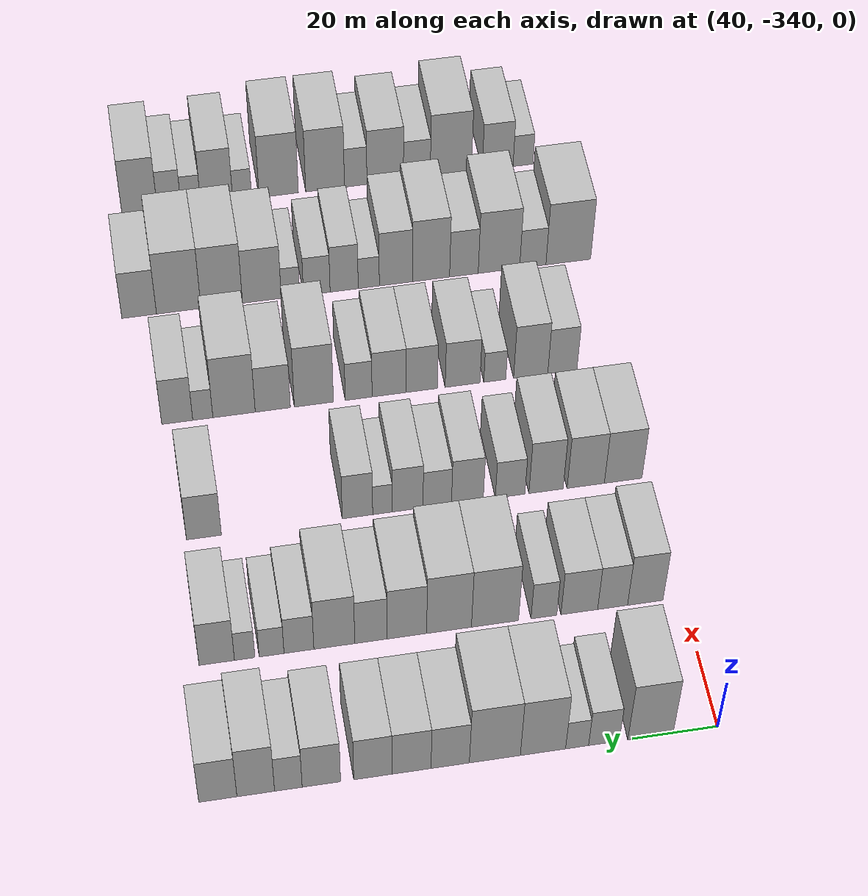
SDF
<sdf version="1.6">
 <world name="default">
  <model name="building_27">
   <static>1</static>
   <pose>50.0000 -324.1556 0 0.000000 0.000000 0.000000</pose>
   <link name="link">
    <pose>0 0 12.00 0 0 0</pose>
    <collision name="collision"><geometry><box><size>20.0000 10.5934 24.0000</size></box></geometry></collision>
    <visual name="visual">
     <cast_shadows>0</cast_shadows>
     <geometry><box><size>20.0000 10.5934 24.0000</size></box></geometry>
     <material>
      <script>
       <uri>model://HANNAS_wall/materials/scripts</uri>
       <uri>model://HANNAS_wall/materials/textures</uri>
       <name>vrc/HANNAS_wall</name>
      </script>
     </material>
    </visual>
   </link>
  </model>
  <model name="building_28">
   <static>1</static>
   <pose>50.0000 -313.2942 0 0.000000 0.000000 0.000000</pose>
   <link name="link">
    <pose>0 0 7.50 0 0 0</pose>
    <collision name="collision"><geometry><box><size>20.0000 7.1293 15.0000</size></box></geometry></collision>
    <visual name="visual">
     <cast_shadows>0</cast_shadows>
     <geometry><box><size>20.0000 7.1293 15.0000</size></box></geometry>
     <material>
      <script>
       <uri>model://HANNAS_wall/materials/scripts</uri>
       <uri>model://HANNAS_wall/materials/textures</uri>
       <name>vrc/HANNAS_wall</name>
      </script>
     </material>
    </visual>
   </link>
  </model>
  <model name="building_29">
   <static>1</static>
   <pose>50.0000 -307.0606 0 0.000000 0.000000 0.000000</pose>
   <link name="link">
    <pose>0 0 6.00 0 0 0</pose>
    <collision name="collision"><geometry><box><size>20.0000 5.3380 12.0000</size></box></geometry></collision>
    <visual name="visual">
     <cast_shadows>0</cast_shadows>
     <geometry><box><size>20.0000 5.3380 12.0000</size></box></geometry>
     <material>
      <script>
       <uri>model://HANNAS_wall/materials/scripts</uri>
       <uri>model://HANNAS_wall/materials/textures</uri>
       <name>vrc/HANNAS_wall</name>
      </script>
     </material>
    </visual>
   </link>
  </model>
  <model name="building_30">
   <static>1</static>
   <pose>50.0000 -299.1573 0 0.000000 0.000000 0.000000</pose>
   <link name="link">
    <pose>0 0 12.00 0 0 0</pose>
    <collision name="collision"><geometry><box><size>20.0000 10.4685 24.0000</size></box></geometry></collision>
    <visual name="visual">
     <cast_shadows>0</cast_shadows>
     <geometry><box><size>20.0000 10.4685 24.0000</size></box></geometry>
     <material>
      <script>
       <uri>model://HANNAS_wall/materials/scripts</uri>
       <uri>model://HANNAS_wall/materials/textures</uri>
       <name>vrc/HANNAS_wall</name>
      </script>
     </material>
    </visual>
   </link>
  </model>
  <model name="building_31">
   <static>1</static>
   <pose>50.0000 -288.0382 0 0.000000 0.000000 0.000000</pose>
   <link name="link">
    <pose>0 0 12.00 0 0 0</pose>
    <collision name="collision"><geometry><box><size>20.0000 11.7698 24.0000</size></box></geometry></collision>
    <visual name="visual">
     <cast_shadows>0</cast_shadows>
     <geometry><box><size>20.0000 11.7698 24.0000</size></box></geometry>
     <material>
      <script>
       <uri>model://HANNAS_wall/materials/scripts</uri>
       <uri>model://HANNAS_wall/materials/textures</uri>
       <name>vrc/HANNAS_wall</name>
      </script>
     </material>
    </visual>
   </link>
  </model>
  <model name="building_32">
   <static>1</static>
   <pose>50.0000 -277.7396 0 0.000000 0.000000 0.000000</pose>
   <link name="link">
    <pose>0 0 9.00 0 0 0</pose>
    <collision name="collision"><geometry><box><size>20.0000 8.8274 18.0000</size></box></geometry></collision>
    <visual name="visual">
     <cast_shadows>0</cast_shadows>
     <geometry><box><size>20.0000 8.8274 18.0000</size></box></geometry>
     <material>
      <script>
       <uri>model://HANNAS_wall/materials/scripts</uri>
       <uri>model://HANNAS_wall/materials/textures</uri>
       <name>vrc/HANNAS_wall</name>
      </script>
     </material>
    </visual>
   </link>
  </model>
  <model name="building_33">
   <static>1</static>
   <pose>50.0000 -268.8376 0 0.000000 0.000000 0.000000</pose>
   <link name="link">
    <pose>0 0 9.00 0 0 0</pose>
    <collision name="collision"><geometry><box><size>20.0000 8.9766 18.0000</size></box></geometry></collision>
    <visual name="visual">
     <cast_shadows>0</cast_shadows>
     <geometry><box><size>20.0000 8.9766 18.0000</size></box></geometry>
     <material>
      <script>
       <uri>model://HANNAS_wall/materials/scripts</uri>
       <uri>model://HANNAS_wall/materials/textures</uri>
       <name>vrc/HANNAS_wall</name>
      </script>
     </material>
    </visual>
   </link>
  </model>
  <model name="building_34">
   <static>1</static>
   <pose>50.0000 -260.0014 0 0.000000 0.000000 0.000000</pose>
   <link name="link">
    <pose>0 0 9.00 0 0 0</pose>
    <collision name="collision"><geometry><box><size>20.0000 8.6957 18.0000</size></box></geometry></collision>
    <visual name="visual">
     <cast_shadows>0</cast_shadows>
     <geometry><box><size>20.0000 8.6957 18.0000</size></box></geometry>
     <material>
      <script>
       <uri>model://HANNAS_wall/materials/scripts</uri>
       <uri>model://HANNAS_wall/materials/textures</uri>
       <name>vrc/HANNAS_wall</name>
      </script>
     </material>
    </visual>
   </link>
  </model>
  <model name="building_35">
   <static>1</static>
   <pose>50.0000 -248.2878 0 0.000000 0.000000 0.000000</pose>
   <link name="link">
    <pose>0 0 9.00 0 0 0</pose>
    <collision name="collision"><geometry><box><size>20.0000 8.7316 18.0000</size></box></geometry></collision>
    <visual name="visual">
     <cast_shadows>0</cast_shadows>
     <geometry><box><size>20.0000 8.7316 18.0000</size></box></geometry>
     <material>
      <script>
       <uri>model://HANNAS_wall/materials/scripts</uri>
       <uri>model://HANNAS_wall/materials/textures</uri>
       <name>vrc/HANNAS_wall</name>
      </script>
     </material>
    </visual>
   </link>
  </model>
  <model name="building_36">
   <static>1</static>
   <pose>50.0000 -240.7855 0 0.000000 0.000000 0.000000</pose>
   <link name="link">
    <pose>0 0 7.50 0 0 0</pose>
    <collision name="collision"><geometry><box><size>20.0000 6.2729 15.0000</size></box></geometry></collision>
    <visual name="visual">
     <cast_shadows>0</cast_shadows>
     <geometry><box><size>20.0000 6.2729 15.0000</size></box></geometry>
     <material>
      <script>
       <uri>model://HANNAS_wall/materials/scripts</uri>
       <uri>model://HANNAS_wall/materials/textures</uri>
       <name>vrc/HANNAS_wall</name>
      </script>
     </material>
    </visual>
   </link>
  </model>
  <model name="building_37">
   <static>1</static>
   <pose>50.0000 -233.3864 0 0.000000 0.000000 0.000000</pose>
   <link name="link">
    <pose>0 0 10.50 0 0 0</pose>
    <collision name="collision"><geometry><box><size>20.0000 8.5254 21.0000</size></box></geometry></collision>
    <visual name="visual">
     <cast_shadows>0</cast_shadows>
     <geometry><box><size>20.0000 8.5254 21.0000</size></box></geometry>
     <material>
      <script>
       <uri>model://HANNAS_wall/materials/scripts</uri>
       <uri>model://HANNAS_wall/materials/textures</uri>
       <name>vrc/HANNAS_wall</name>
      </script>
     </material>
    </visual>
   </link>
  </model>
  <model name="building_38">
   <static>1</static>
   <pose>50.0000 -224.8166 0 0.000000 0.000000 0.000000</pose>
   <link name="link">
    <pose>0 0 9.00 0 0 0</pose>
    <collision name="collision"><geometry><box><size>20.0000 8.6141 18.0000</size></box></geometry></collision>
    <visual name="visual">
     <cast_shadows>0</cast_shadows>
     <geometry><box><size>20.0000 8.6141 18.0000</size></box></geometry>
     <material>
      <script>
       <uri>model://HANNAS_wall/materials/scripts</uri>
       <uri>model://HANNAS_wall/materials/textures</uri>
       <name>vrc/HANNAS_wall</name>
      </script>
     </material>
    </visual>
   </link>
  </model>
  <model name="building_152">
   <static>1</static>
   <pose>85.0000 -330.8182 0 0.000000 0.000000 0.000000</pose>
   <link name="link">
    <pose>0 0 10.50 0 0 0</pose>
    <collision name="collision"><geometry><box><size>20.0000 8.5727 21.0000</size></box></geometry></collision>
    <visual name="visual">
     <cast_shadows>0</cast_shadows>
     <geometry><box><size>20.0000 8.5727 21.0000</size></box></geometry>
     <material>
      <script>
       <uri>model://HANNAS_wall/materials/scripts</uri>
       <uri>model://HANNAS_wall/materials/textures</uri>
       <name>vrc/HANNAS_wall</name>
      </script>
     </material>
    </visual>
   </link>
  </model>
  <model name="building_153">
   <static>1</static>
   <pose>85.0000 -322.9172 0 0.000000 0.000000 0.000000</pose>
   <link name="link">
    <pose>0 0 9.00 0 0 0</pose>
    <collision name="collision"><geometry><box><size>20.0000 7.2294 18.0000</size></box></geometry></collision>
    <visual name="visual">
     <cast_shadows>0</cast_shadows>
     <geometry><box><size>20.0000 7.2294 18.0000</size></box></geometry>
     <material>
      <script>
       <uri>model://HANNAS_wall/materials/scripts</uri>
       <uri>model://HANNAS_wall/materials/textures</uri>
       <name>vrc/HANNAS_wall</name>
      </script>
     </material>
    </visual>
   </link>
  </model>
  <model name="building_154">
   <static>1</static>
   <pose>85.0000 -314.8812 0 0.000000 0.000000 0.000000</pose>
   <link name="link">
    <pose>0 0 9.00 0 0 0</pose>
    <collision name="collision"><geometry><box><size>20.0000 8.8428 18.0000</size></box></geometry></collision>
    <visual name="visual">
     <cast_shadows>0</cast_shadows>
     <geometry><box><size>20.0000 8.8428 18.0000</size></box></geometry>
     <material>
      <script>
       <uri>model://HANNAS_wall/materials/scripts</uri>
       <uri>model://HANNAS_wall/materials/textures</uri>
       <name>vrc/HANNAS_wall</name>
      </script>
     </material>
    </visual>
   </link>
  </model>
  <model name="building_155">
   <static>1</static>
   <pose>85.0000 -306.3638 0 0.000000 0.000000 0.000000</pose>
   <link name="link">
    <pose>0 0 7.50 0 0 0</pose>
    <collision name="collision"><geometry><box><size>20.0000 6.1920 15.0000</size></box></geometry></collision>
    <visual name="visual">
     <cast_shadows>0</cast_shadows>
     <geometry><box><size>20.0000 6.1920 15.0000</size></box></geometry>
     <material>
      <script>
       <uri>model://HANNAS_wall/materials/scripts</uri>
       <uri>model://HANNAS_wall/materials/textures</uri>
       <name>vrc/HANNAS_wall</name>
      </script>
     </material>
    </visual>
   </link>
  </model>
  <model name="building_156">
   <static>1</static>
   <pose>85.0000 -294.6342 0 0.000000 0.000000 0.000000</pose>
   <link name="link">
    <pose>0 0 12.00 0 0 0</pose>
    <collision name="collision"><geometry><box><size>20.0000 11.2672 24.0000</size></box></geometry></collision>
    <visual name="visual">
     <cast_shadows>0</cast_shadows>
     <geometry><box><size>20.0000 11.2672 24.0000</size></box></geometry>
     <material>
      <script>
       <uri>model://HANNAS_wall/materials/scripts</uri>
       <uri>model://HANNAS_wall/materials/textures</uri>
       <name>vrc/HANNAS_wall</name>
      </script>
     </material>
    </visual>
   </link>
  </model>
  <model name="building_157">
   <static>1</static>
   <pose>85.0000 -283.6379 0 0.000000 0.000000 0.000000</pose>
   <link name="link">
    <pose>0 0 12.00 0 0 0</pose>
    <collision name="collision"><geometry><box><size>20.0000 10.7253 24.0000</size></box></geometry></collision>
    <visual name="visual">
     <cast_shadows>0</cast_shadows>
     <geometry><box><size>20.0000 10.7253 24.0000</size></box></geometry>
     <material>
      <script>
       <uri>model://HANNAS_wall/materials/scripts</uri>
       <uri>model://HANNAS_wall/materials/textures</uri>
       <name>vrc/HANNAS_wall</name>
      </script>
     </material>
    </visual>
   </link>
  </model>
  <model name="building_158">
   <static>1</static>
   <pose>85.0000 -273.5858 0 0.000000 0.000000 0.000000</pose>
   <link name="link">
    <pose>0 0 10.50 0 0 0</pose>
    <collision name="collision"><geometry><box><size>20.0000 9.3789 21.0000</size></box></geometry></collision>
    <visual name="visual">
     <cast_shadows>0</cast_shadows>
     <geometry><box><size>20.0000 9.3789 21.0000</size></box></geometry>
     <material>
      <script>
       <uri>model://HANNAS_wall/materials/scripts</uri>
       <uri>model://HANNAS_wall/materials/textures</uri>
       <name>vrc/HANNAS_wall</name>
      </script>
     </material>
    </visual>
   </link>
  </model>
  <model name="building_159">
   <static>1</static>
   <pose>85.0000 -265.0694 0 0.000000 0.000000 0.000000</pose>
   <link name="link">
    <pose>0 0 9.00 0 0 0</pose>
    <collision name="collision"><geometry><box><size>20.0000 7.6539 18.0000</size></box></geometry></collision>
    <visual name="visual">
     <cast_shadows>0</cast_shadows>
     <geometry><box><size>20.0000 7.6539 18.0000</size></box></geometry>
     <material>
      <script>
       <uri>model://HANNAS_wall/materials/scripts</uri>
       <uri>model://HANNAS_wall/materials/textures</uri>
       <name>vrc/HANNAS_wall</name>
      </script>
     </material>
    </visual>
   </link>
  </model>
  <model name="building_160">
   <static>1</static>
   <pose>85.0000 -256.4128 0 0.000000 0.000000 0.000000</pose>
   <link name="link">
    <pose>0 0 10.50 0 0 0</pose>
    <collision name="collision"><geometry><box><size>20.0000 9.6593 21.0000</size></box></geometry></collision>
    <visual name="visual">
     <cast_shadows>0</cast_shadows>
     <geometry><box><size>20.0000 9.6593 21.0000</size></box></geometry>
     <material>
      <script>
       <uri>model://HANNAS_wall/materials/scripts</uri>
       <uri>model://HANNAS_wall/materials/textures</uri>
       <name>vrc/HANNAS_wall</name>
      </script>
     </material>
    </visual>
   </link>
  </model>
  <model name="building_161">
   <static>1</static>
   <pose>85.0000 -248.0635 0 0.000000 0.000000 0.000000</pose>
   <link name="link">
    <pose>0 0 7.50 0 0 0</pose>
    <collision name="collision"><geometry><box><size>20.0000 7.0393 15.0000</size></box></geometry></collision>
    <visual name="visual">
     <cast_shadows>0</cast_shadows>
     <geometry><box><size>20.0000 7.0393 15.0000</size></box></geometry>
     <material>
      <script>
       <uri>model://HANNAS_wall/materials/scripts</uri>
       <uri>model://HANNAS_wall/materials/textures</uri>
       <name>vrc/HANNAS_wall</name>
      </script>
     </material>
    </visual>
   </link>
  </model>
  <model name="building_162">
   <static>1</static>
   <pose>85.0000 -241.6218 0 0.000000 0.000000 0.000000</pose>
   <link name="link">
    <pose>0 0 6.00 0 0 0</pose>
    <collision name="collision"><geometry><box><size>20.0000 5.8442 12.0000</size></box></geometry></collision>
    <visual name="visual">
     <cast_shadows>0</cast_shadows>
     <geometry><box><size>20.0000 5.8442 12.0000</size></box></geometry>
     <material>
      <script>
       <uri>model://HANNAS_wall/materials/scripts</uri>
       <uri>model://HANNAS_wall/materials/textures</uri>
       <name>vrc/HANNAS_wall</name>
      </script>
     </material>
    </visual>
   </link>
  </model>
  <model name="building_163">
   <static>1</static>
   <pose>85.0000 -235.2996 0 0.000000 0.000000 0.000000</pose>
   <link name="link">
    <pose>0 0 6.00 0 0 0</pose>
    <collision name="collision"><geometry><box><size>20.0000 4.8002 12.0000</size></box></geometry></collision>
    <visual name="visual">
     <cast_shadows>0</cast_shadows>
     <geometry><box><size>20.0000 4.8002 12.0000</size></box></geometry>
     <material>
      <script>
       <uri>model://HANNAS_wall/materials/scripts</uri>
       <uri>model://HANNAS_wall/materials/textures</uri>
       <name>vrc/HANNAS_wall</name>
      </script>
     </material>
    </visual>
   </link>
  </model>
  <model name="building_164">
   <static>1</static>
   <pose>85.0000 -228.7469 0 0.000000 0.000000 0.000000</pose>
   <link name="link">
    <pose>0 0 9.00 0 0 0</pose>
    <collision name="collision"><geometry><box><size>20.0000 8.3051 18.0000</size></box></geometry></collision>
    <visual name="visual">
     <cast_shadows>0</cast_shadows>
     <geometry><box><size>20.0000 8.3051 18.0000</size></box></geometry>
     <material>
      <script>
       <uri>model://HANNAS_wall/materials/scripts</uri>
       <uri>model://HANNAS_wall/materials/textures</uri>
       <name>vrc/HANNAS_wall</name>
      </script>
     </material>
    </visual>
   </link>
  </model>
  <model name="building_277">
   <static>1</static>
   <pose>120.0000 -333.1719 0 0.000000 0.000000 0.000000</pose>
   <link name="link">
    <pose>0 0 10.50 0 0 0</pose>
    <collision name="collision"><geometry><box><size>20.0000 9.4096 21.0000</size></box></geometry></collision>
    <visual name="visual">
     <cast_shadows>0</cast_shadows>
     <geometry><box><size>20.0000 9.4096 21.0000</size></box></geometry>
     <material>
      <script>
       <uri>model://HANNAS_wall/materials/scripts</uri>
       <uri>model://HANNAS_wall/materials/textures</uri>
       <name>vrc/HANNAS_wall</name>
      </script>
     </material>
    </visual>
   </link>
  </model>
  <model name="building_278">
   <static>1</static>
   <pose>120.0000 -323.8063 0 0.000000 0.000000 0.000000</pose>
   <link name="link">
    <pose>0 0 10.50 0 0 0</pose>
    <collision name="collision"><geometry><box><size>20.0000 9.3215 21.0000</size></box></geometry></collision>
    <visual name="visual">
     <cast_shadows>0</cast_shadows>
     <geometry><box><size>20.0000 9.3215 21.0000</size></box></geometry>
     <material>
      <script>
       <uri>model://HANNAS_wall/materials/scripts</uri>
       <uri>model://HANNAS_wall/materials/textures</uri>
       <name>vrc/HANNAS_wall</name>
      </script>
     </material>
    </visual>
   </link>
  </model>
  <model name="building_279">
   <static>1</static>
   <pose>120.0000 -313.8893 0 0.000000 0.000000 0.000000</pose>
   <link name="link">
    <pose>0 0 10.50 0 0 0</pose>
    <collision name="collision"><geometry><box><size>20.0000 8.5126 21.0000</size></box></geometry></collision>
    <visual name="visual">
     <cast_shadows>0</cast_shadows>
     <geometry><box><size>20.0000 8.5126 21.0000</size></box></geometry>
     <material>
      <script>
       <uri>model://HANNAS_wall/materials/scripts</uri>
       <uri>model://HANNAS_wall/materials/textures</uri>
       <name>vrc/HANNAS_wall</name>
      </script>
     </material>
    </visual>
   </link>
  </model>
  <model name="building_280">
   <static>1</static>
   <pose>120.0000 -304.9599 0 0.000000 0.000000 0.000000</pose>
   <link name="link">
    <pose>0 0 7.50 0 0 0</pose>
    <collision name="collision"><geometry><box><size>20.0000 7.3462 15.0000</size></box></geometry></collision>
    <visual name="visual">
     <cast_shadows>0</cast_shadows>
     <geometry><box><size>20.0000 7.3462 15.0000</size></box></geometry>
     <material>
      <script>
       <uri>model://HANNAS_wall/materials/scripts</uri>
       <uri>model://HANNAS_wall/materials/textures</uri>
       <name>vrc/HANNAS_wall</name>
      </script>
     </material>
    </visual>
   </link>
  </model>
  <model name="building_281">
   <static>1</static>
   <pose>120.0000 -294.3494 0 0.000000 0.000000 0.000000</pose>
   <link name="link">
    <pose>0 0 9.00 0 0 0</pose>
    <collision name="collision"><geometry><box><size>20.0000 7.8747 18.0000</size></box></geometry></collision>
    <visual name="visual">
     <cast_shadows>0</cast_shadows>
     <geometry><box><size>20.0000 7.8747 18.0000</size></box></geometry>
     <material>
      <script>
       <uri>model://HANNAS_wall/materials/scripts</uri>
       <uri>model://HANNAS_wall/materials/textures</uri>
       <name>vrc/HANNAS_wall</name>
      </script>
     </material>
    </visual>
   </link>
  </model>
  <model name="building_282">
   <static>1</static>
   <pose>120.0000 -286.8837 0 0.000000 0.000000 0.000000</pose>
   <link name="link">
    <pose>0 0 7.50 0 0 0</pose>
    <collision name="collision"><geometry><box><size>20.0000 7.0568 15.0000</size></box></geometry></collision>
    <visual name="visual">
     <cast_shadows>0</cast_shadows>
     <geometry><box><size>20.0000 7.0568 15.0000</size></box></geometry>
     <material>
      <script>
       <uri>model://HANNAS_wall/materials/scripts</uri>
       <uri>model://HANNAS_wall/materials/textures</uri>
       <name>vrc/HANNAS_wall</name>
      </script>
     </material>
    </visual>
   </link>
  </model>
  <model name="building_283">
   <static>1</static>
   <pose>120.0000 -279.5842 0 0.000000 0.000000 0.000000</pose>
   <link name="link">
    <pose>0 0 9.00 0 0 0</pose>
    <collision name="collision"><geometry><box><size>20.0000 7.5422 18.0000</size></box></geometry></collision>
    <visual name="visual">
     <cast_shadows>0</cast_shadows>
     <geometry><box><size>20.0000 7.5422 18.0000</size></box></geometry>
     <material>
      <script>
       <uri>model://HANNAS_wall/materials/scripts</uri>
       <uri>model://HANNAS_wall/materials/textures</uri>
       <name>vrc/HANNAS_wall</name>
      </script>
     </material>
    </visual>
   </link>
  </model>
  <model name="building_284">
   <static>1</static>
   <pose>120.0000 -273.4069 0 0.000000 0.000000 0.000000</pose>
   <link name="link">
    <pose>0 0 6.00 0 0 0</pose>
    <collision name="collision"><geometry><box><size>20.0000 4.8124 12.0000</size></box></geometry></collision>
    <visual name="visual">
     <cast_shadows>0</cast_shadows>
     <geometry><box><size>20.0000 4.8124 12.0000</size></box></geometry>
     <material>
      <script>
       <uri>model://HANNAS_wall/materials/scripts</uri>
       <uri>model://HANNAS_wall/materials/textures</uri>
       <name>vrc/HANNAS_wall</name>
      </script>
     </material>
    </visual>
   </link>
  </model>
  <model name="building_285">
   <static>1</static>
   <pose>120.0000 -267.2630 0 0.000000 0.000000 0.000000</pose>
   <link name="link">
    <pose>0 0 9.00 0 0 0</pose>
    <collision name="collision"><geometry><box><size>20.0000 7.4753 18.0000</size></box></geometry></collision>
    <visual name="visual">
     <cast_shadows>0</cast_shadows>
     <geometry><box><size>20.0000 7.4753 18.0000</size></box></geometry>
     <material>
      <script>
       <uri>model://HANNAS_wall/materials/scripts</uri>
       <uri>model://HANNAS_wall/materials/textures</uri>
       <name>vrc/HANNAS_wall</name>
      </script>
     </material>
    </visual>
   </link>
  </model>
  <model name="building_286">
   <static>1</static>
   <pose>120.0000 -229.8068 0 0.000000 0.000000 0.000000</pose>
   <link name="link">
    <pose>0 0 9.00 0 0 0</pose>
    <collision name="collision"><geometry><box><size>20.0000 8.4791 18.0000</size></box></geometry></collision>
    <visual name="visual">
     <cast_shadows>0</cast_shadows>
     <geometry><box><size>20.0000 8.4791 18.0000</size></box></geometry>
     <material>
      <script>
       <uri>model://HANNAS_wall/materials/scripts</uri>
       <uri>model://HANNAS_wall/materials/textures</uri>
       <name>vrc/HANNAS_wall</name>
      </script>
     </material>
    </visual>
   </link>
  </model>
  <model name="building_408">
   <static>1</static>
   <pose>155.0000 -325.1106 0 0.000000 0.000000 0.000000</pose>
   <link name="link">
    <pose>0 0 9.00 0 0 0</pose>
    <collision name="collision"><geometry><box><size>20.0000 7.5282 18.0000</size></box></geometry></collision>
    <visual name="visual">
     <cast_shadows>0</cast_shadows>
     <geometry><box><size>20.0000 7.5282 18.0000</size></box></geometry>
     <material>
      <script>
       <uri>model://HANNAS_wall/materials/scripts</uri>
       <uri>model://HANNAS_wall/materials/textures</uri>
       <name>vrc/HANNAS_wall</name>
      </script>
     </material>
    </visual>
   </link>
  </model>
  <model name="building_409">
   <static>1</static>
   <pose>155.0000 -316.9504 0 0.000000 0.000000 0.000000</pose>
   <link name="link">
    <pose>0 0 10.50 0 0 0</pose>
    <collision name="collision"><geometry><box><size>20.0000 8.7922 21.0000</size></box></geometry></collision>
    <visual name="visual">
     <cast_shadows>0</cast_shadows>
     <geometry><box><size>20.0000 8.7922 21.0000</size></box></geometry>
     <material>
      <script>
       <uri>model://HANNAS_wall/materials/scripts</uri>
       <uri>model://HANNAS_wall/materials/textures</uri>
       <name>vrc/HANNAS_wall</name>
      </script>
     </material>
    </visual>
   </link>
  </model>
  <model name="building_410">
   <static>1</static>
   <pose>155.0000 -307.7290 0 0.000000 0.000000 0.000000</pose>
   <link name="link">
    <pose>0 0 6.00 0 0 0</pose>
    <collision name="collision"><geometry><box><size>20.0000 5.6506 12.0000</size></box></geometry></collision>
    <visual name="visual">
     <cast_shadows>0</cast_shadows>
     <geometry><box><size>20.0000 5.6506 12.0000</size></box></geometry>
     <material>
      <script>
       <uri>model://HANNAS_wall/materials/scripts</uri>
       <uri>model://HANNAS_wall/materials/textures</uri>
       <name>vrc/HANNAS_wall</name>
      </script>
     </material>
    </visual>
   </link>
  </model>
  <model name="building_411">
   <static>1</static>
   <pose>155.0000 -299.4483 0 0.000000 0.000000 0.000000</pose>
   <link name="link">
    <pose>0 0 9.00 0 0 0</pose>
    <collision name="collision"><geometry><box><size>20.0000 8.9108 18.0000</size></box></geometry></collision>
    <visual name="visual">
     <cast_shadows>0</cast_shadows>
     <geometry><box><size>20.0000 8.9108 18.0000</size></box></geometry>
     <material>
      <script>
       <uri>model://HANNAS_wall/materials/scripts</uri>
       <uri>model://HANNAS_wall/materials/textures</uri>
       <name>vrc/HANNAS_wall</name>
      </script>
     </material>
    </visual>
   </link>
  </model>
  <model name="building_412">
   <static>1</static>
   <pose>155.0000 -289.0039 0 0.000000 0.000000 0.000000</pose>
   <link name="link">
    <pose>0 0 9.00 0 0 0</pose>
    <collision name="collision"><geometry><box><size>20.0000 7.9780 18.0000</size></box></geometry></collision>
    <visual name="visual">
     <cast_shadows>0</cast_shadows>
     <geometry><box><size>20.0000 7.9780 18.0000</size></box></geometry>
     <material>
      <script>
       <uri>model://HANNAS_wall/materials/scripts</uri>
       <uri>model://HANNAS_wall/materials/textures</uri>
       <name>vrc/HANNAS_wall</name>
      </script>
     </material>
    </visual>
   </link>
  </model>
  <model name="building_413">
   <static>1</static>
   <pose>155.0000 -280.6800 0 0.000000 0.000000 0.000000</pose>
   <link name="link">
    <pose>0 0 9.00 0 0 0</pose>
    <collision name="collision"><geometry><box><size>20.0000 8.6700 18.0000</size></box></geometry></collision>
    <visual name="visual">
     <cast_shadows>0</cast_shadows>
     <geometry><box><size>20.0000 8.6700 18.0000</size></box></geometry>
     <material>
      <script>
       <uri>model://HANNAS_wall/materials/scripts</uri>
       <uri>model://HANNAS_wall/materials/textures</uri>
       <name>vrc/HANNAS_wall</name>
      </script>
     </material>
    </visual>
   </link>
  </model>
  <model name="building_414">
   <static>1</static>
   <pose>155.0000 -272.9404 0 0.000000 0.000000 0.000000</pose>
   <link name="link">
    <pose>0 0 7.50 0 0 0</pose>
    <collision name="collision"><geometry><box><size>20.0000 6.8093 15.0000</size></box></geometry></collision>
    <visual name="visual">
     <cast_shadows>0</cast_shadows>
     <geometry><box><size>20.0000 6.8093 15.0000</size></box></geometry>
     <material>
      <script>
       <uri>model://HANNAS_wall/materials/scripts</uri>
       <uri>model://HANNAS_wall/materials/textures</uri>
       <name>vrc/HANNAS_wall</name>
      </script>
     </material>
    </visual>
   </link>
  </model>
  <model name="building_415">
   <static>1</static>
   <pose>155.0000 -261.5916 0 0.000000 0.000000 0.000000</pose>
   <link name="link">
    <pose>0 0 12.00 0 0 0</pose>
    <collision name="collision"><geometry><box><size>20.0000 9.8883 24.0000</size></box></geometry></collision>
    <visual name="visual">
     <cast_shadows>0</cast_shadows>
     <geometry><box><size>20.0000 9.8883 24.0000</size></box></geometry>
     <material>
      <script>
       <uri>model://HANNAS_wall/materials/scripts</uri>
       <uri>model://HANNAS_wall/materials/textures</uri>
       <name>vrc/HANNAS_wall</name>
      </script>
     </material>
    </visual>
   </link>
  </model>
  <model name="building_416">
   <static>1</static>
   <pose>155.0000 -251.2145 0 0.000000 0.000000 0.000000</pose>
   <link name="link">
    <pose>0 0 9.00 0 0 0</pose>
    <collision name="collision"><geometry><box><size>20.0000 8.8659 18.0000</size></box></geometry></collision>
    <visual name="visual">
     <cast_shadows>0</cast_shadows>
     <geometry><box><size>20.0000 8.8659 18.0000</size></box></geometry>
     <material>
      <script>
       <uri>model://HANNAS_wall/materials/scripts</uri>
       <uri>model://HANNAS_wall/materials/textures</uri>
       <name>vrc/HANNAS_wall</name>
      </script>
     </material>
    </visual>
   </link>
  </model>
  <model name="building_417">
   <static>1</static>
   <pose>155.0000 -241.4467 0 0.000000 0.000000 0.000000</pose>
   <link name="link">
    <pose>0 0 12.00 0 0 0</pose>
    <collision name="collision"><geometry><box><size>20.0000 10.6696 24.0000</size></box></geometry></collision>
    <visual name="visual">
     <cast_shadows>0</cast_shadows>
     <geometry><box><size>20.0000 10.6696 24.0000</size></box></geometry>
     <material>
      <script>
       <uri>model://HANNAS_wall/materials/scripts</uri>
       <uri>model://HANNAS_wall/materials/textures</uri>
       <name>vrc/HANNAS_wall</name>
      </script>
     </material>
    </visual>
   </link>
  </model>
  <model name="building_418">
   <static>1</static>
   <pose>155.0000 -233.5893 0 0.000000 0.000000 0.000000</pose>
   <link name="link">
    <pose>0 0 6.00 0 0 0</pose>
    <collision name="collision"><geometry><box><size>20.0000 5.0452 12.0000</size></box></geometry></collision>
    <visual name="visual">
     <cast_shadows>0</cast_shadows>
     <geometry><box><size>20.0000 5.0452 12.0000</size></box></geometry>
     <material>
      <script>
       <uri>model://HANNAS_wall/materials/scripts</uri>
       <uri>model://HANNAS_wall/materials/textures</uri>
       <name>vrc/HANNAS_wall</name>
      </script>
     </material>
    </visual>
   </link>
  </model>
  <model name="building_419">
   <static>1</static>
   <pose>155.0000 -227.1802 0 0.000000 0.000000 0.000000</pose>
   <link name="link">
    <pose>0 0 9.00 0 0 0</pose>
    <collision name="collision"><geometry><box><size>20.0000 7.7730 18.0000</size></box></geometry></collision>
    <visual name="visual">
     <cast_shadows>0</cast_shadows>
     <geometry><box><size>20.0000 7.7730 18.0000</size></box></geometry>
     <material>
      <script>
       <uri>model://HANNAS_wall/materials/scripts</uri>
       <uri>model://HANNAS_wall/materials/textures</uri>
       <name>vrc/HANNAS_wall</name>
      </script>
     </material>
    </visual>
   </link>
  </model>
  <model name="building_525">
   <static>1</static>
   <pose>190.0000 -333.8595 0 0.000000 0.000000 0.000000</pose>
   <link name="link">
    <pose>0 0 12.00 0 0 0</pose>
    <collision name="collision"><geometry><box><size>20.0000 11.9282 24.0000</size></box></geometry></collision>
    <visual name="visual">
     <cast_shadows>0</cast_shadows>
     <geometry><box><size>20.0000 11.9282 24.0000</size></box></geometry>
     <material>
      <script>
       <uri>model://HANNAS_wall/materials/scripts</uri>
       <uri>model://HANNAS_wall/materials/textures</uri>
       <name>vrc/HANNAS_wall</name>
      </script>
     </material>
    </visual>
   </link>
  </model>
  <model name="building_526">
   <static>1</static>
   <pose>190.0000 -324.3900 0 0.000000 0.000000 0.000000</pose>
   <link name="link">
    <pose>0 0 7.50 0 0 0</pose>
    <collision name="collision"><geometry><box><size>20.0000 7.0108 15.0000</size></box></geometry></collision>
    <visual name="visual">
     <cast_shadows>0</cast_shadows>
     <geometry><box><size>20.0000 7.0108 15.0000</size></box></geometry>
     <material>
      <script>
       <uri>model://HANNAS_wall/materials/scripts</uri>
       <uri>model://HANNAS_wall/materials/textures</uri>
       <name>vrc/HANNAS_wall</name>
      </script>
     </material>
    </visual>
   </link>
  </model>
  <model name="building_527">
   <static>1</static>
   <pose>190.0000 -315.3858 0 0.000000 0.000000 0.000000</pose>
   <link name="link">
    <pose>0 0 12.00 0 0 0</pose>
    <collision name="collision"><geometry><box><size>20.0000 10.9977 24.0000</size></box></geometry></collision>
    <visual name="visual">
     <cast_shadows>0</cast_shadows>
     <geometry><box><size>20.0000 10.9977 24.0000</size></box></geometry>
     <material>
      <script>
       <uri>model://HANNAS_wall/materials/scripts</uri>
       <uri>model://HANNAS_wall/materials/textures</uri>
       <name>vrc/HANNAS_wall</name>
      </script>
     </material>
    </visual>
   </link>
  </model>
  <model name="building_528">
   <static>1</static>
   <pose>190.0000 -306.0948 0 0.000000 0.000000 0.000000</pose>
   <link name="link">
    <pose>0 0 9.00 0 0 0</pose>
    <collision name="collision"><geometry><box><size>20.0000 7.5841 18.0000</size></box></geometry></collision>
    <visual name="visual">
     <cast_shadows>0</cast_shadows>
     <geometry><box><size>20.0000 7.5841 18.0000</size></box></geometry>
     <material>
      <script>
       <uri>model://HANNAS_wall/materials/scripts</uri>
       <uri>model://HANNAS_wall/materials/textures</uri>
       <name>vrc/HANNAS_wall</name>
      </script>
     </material>
    </visual>
   </link>
  </model>
  <model name="building_529">
   <static>1</static>
   <pose>190.0000 -297.3910 0 0.000000 0.000000 0.000000</pose>
   <link name="link">
    <pose>0 0 12.00 0 0 0</pose>
    <collision name="collision"><geometry><box><size>20.0000 9.8235 24.0000</size></box></geometry></collision>
    <visual name="visual">
     <cast_shadows>0</cast_shadows>
     <geometry><box><size>20.0000 9.8235 24.0000</size></box></geometry>
     <material>
      <script>
       <uri>model://HANNAS_wall/materials/scripts</uri>
       <uri>model://HANNAS_wall/materials/textures</uri>
       <name>vrc/HANNAS_wall</name>
      </script>
     </material>
    </visual>
   </link>
  </model>
  <model name="building_530">
   <static>1</static>
   <pose>190.0000 -288.1200 0 0.000000 0.000000 0.000000</pose>
   <link name="link">
    <pose>0 0 10.50 0 0 0</pose>
    <collision name="collision"><geometry><box><size>20.0000 8.7186 21.0000</size></box></geometry></collision>
    <visual name="visual">
     <cast_shadows>0</cast_shadows>
     <geometry><box><size>20.0000 8.7186 21.0000</size></box></geometry>
     <material>
      <script>
       <uri>model://HANNAS_wall/materials/scripts</uri>
       <uri>model://HANNAS_wall/materials/textures</uri>
       <name>vrc/HANNAS_wall</name>
      </script>
     </material>
    </visual>
   </link>
  </model>
  <model name="building_531">
   <static>1</static>
   <pose>190.0000 -280.9846 0 0.000000 0.000000 0.000000</pose>
   <link name="link">
    <pose>0 0 6.00 0 0 0</pose>
    <collision name="collision"><geometry><box><size>20.0000 5.5521 12.0000</size></box></geometry></collision>
    <visual name="visual">
     <cast_shadows>0</cast_shadows>
     <geometry><box><size>20.0000 5.5521 12.0000</size></box></geometry>
     <material>
      <script>
       <uri>model://HANNAS_wall/materials/scripts</uri>
       <uri>model://HANNAS_wall/materials/textures</uri>
       <name>vrc/HANNAS_wall</name>
      </script>
     </material>
    </visual>
   </link>
  </model>
  <model name="building_532">
   <static>1</static>
   <pose>190.0000 -274.5273 0 0.000000 0.000000 0.000000</pose>
   <link name="link">
    <pose>0 0 9.00 0 0 0</pose>
    <collision name="collision"><geometry><box><size>20.0000 7.3625 18.0000</size></box></geometry></collision>
    <visual name="visual">
     <cast_shadows>0</cast_shadows>
     <geometry><box><size>20.0000 7.3625 18.0000</size></box></geometry>
     <material>
      <script>
       <uri>model://HANNAS_wall/materials/scripts</uri>
       <uri>model://HANNAS_wall/materials/textures</uri>
       <name>vrc/HANNAS_wall</name>
      </script>
     </material>
    </visual>
   </link>
  </model>
  <model name="building_533">
   <static>1</static>
   <pose>190.0000 -267.3660 0 0.000000 0.000000 0.000000</pose>
   <link name="link">
    <pose>0 0 7.50 0 0 0</pose>
    <collision name="collision"><geometry><box><size>20.0000 6.9599 15.0000</size></box></geometry></collision>
    <visual name="visual">
     <cast_shadows>0</cast_shadows>
     <geometry><box><size>20.0000 6.9599 15.0000</size></box></geometry>
     <material>
      <script>
       <uri>model://HANNAS_wall/materials/scripts</uri>
       <uri>model://HANNAS_wall/materials/textures</uri>
       <name>vrc/HANNAS_wall</name>
      </script>
     </material>
    </visual>
   </link>
  </model>
  <model name="building_534">
   <static>1</static>
   <pose>190.0000 -260.4777 0 0.000000 0.000000 0.000000</pose>
   <link name="link">
    <pose>0 0 6.00 0 0 0</pose>
    <collision name="collision"><geometry><box><size>20.0000 4.8166 12.0000</size></box></geometry></collision>
    <visual name="visual">
     <cast_shadows>0</cast_shadows>
     <geometry><box><size>20.0000 4.8166 12.0000</size></box></geometry>
     <material>
      <script>
       <uri>model://HANNAS_wall/materials/scripts</uri>
       <uri>model://HANNAS_wall/materials/textures</uri>
       <name>vrc/HANNAS_wall</name>
      </script>
     </material>
    </visual>
   </link>
  </model>
  <model name="building_535">
   <static>1</static>
   <pose>190.0000 -253.0160 0 0.000000 0.000000 0.000000</pose>
   <link name="link">
    <pose>0 0 10.50 0 0 0</pose>
    <collision name="collision"><geometry><box><size>20.0000 10.1068 21.0000</size></box></geometry></collision>
    <visual name="visual">
     <cast_shadows>0</cast_shadows>
     <geometry><box><size>20.0000 10.1068 21.0000</size></box></geometry>
     <material>
      <script>
       <uri>model://HANNAS_wall/materials/scripts</uri>
       <uri>model://HANNAS_wall/materials/textures</uri>
       <name>vrc/HANNAS_wall</name>
      </script>
     </material>
    </visual>
   </link>
  </model>
  <model name="building_536">
   <static>1</static>
   <pose>190.0000 -242.5600 0 0.000000 0.000000 0.000000</pose>
   <link name="link">
    <pose>0 0 12.00 0 0 0</pose>
    <collision name="collision"><geometry><box><size>20.0000 10.8052 24.0000</size></box></geometry></collision>
    <visual name="visual">
     <cast_shadows>0</cast_shadows>
     <geometry><box><size>20.0000 10.8052 24.0000</size></box></geometry>
     <material>
      <script>
       <uri>model://HANNAS_wall/materials/scripts</uri>
       <uri>model://HANNAS_wall/materials/textures</uri>
       <name>vrc/HANNAS_wall</name>
      </script>
     </material>
    </visual>
   </link>
  </model>
  <model name="building_537">
   <static>1</static>
   <pose>190.0000 -231.4043 0 0.000000 0.000000 0.000000</pose>
   <link name="link">
    <pose>0 0 12.00 0 0 0</pose>
    <collision name="collision"><geometry><box><size>20.0000 11.5063 24.0000</size></box></geometry></collision>
    <visual name="visual">
     <cast_shadows>0</cast_shadows>
     <geometry><box><size>20.0000 11.5063 24.0000</size></box></geometry>
     <material>
      <script>
       <uri>model://HANNAS_wall/materials/scripts</uri>
       <uri>model://HANNAS_wall/materials/textures</uri>
       <name>vrc/HANNAS_wall</name>
      </script>
     </material>
    </visual>
   </link>
  </model>
  <model name="building_538">
   <static>1</static>
   <pose>190.0000 -221.1734 0 0.000000 0.000000 0.000000</pose>
   <link name="link">
    <pose>0 0 9.00 0 0 0</pose>
    <collision name="collision"><geometry><box><size>20.0000 8.9556 18.0000</size></box></geometry></collision>
    <visual name="visual">
     <cast_shadows>0</cast_shadows>
     <geometry><box><size>20.0000 8.9556 18.0000</size></box></geometry>
     <material>
      <script>
       <uri>model://HANNAS_wall/materials/scripts</uri>
       <uri>model://HANNAS_wall/materials/textures</uri>
       <name>vrc/HANNAS_wall</name>
      </script>
     </material>
    </visual>
   </link>
  </model>
  <model name="building_643">
   <static>1</static>
   <pose>225.0000 -328.6010 0 0.000000 0.000000 0.000000</pose>
   <link name="link">
    <pose>0 0 6.00 0 0 0</pose>
    <collision name="collision"><geometry><box><size>20.0000 5.4708 12.0000</size></box></geometry></collision>
    <visual name="visual">
     <cast_shadows>0</cast_shadows>
     <geometry><box><size>20.0000 5.4708 12.0000</size></box></geometry>
     <material>
      <script>
       <uri>model://HANNAS_wall/materials/scripts</uri>
       <uri>model://HANNAS_wall/materials/textures</uri>
       <name>vrc/HANNAS_wall</name>
      </script>
     </material>
    </visual>
   </link>
  </model>
  <model name="building_644">
   <static>1</static>
   <pose>225.0000 -321.6440 0 0.000000 0.000000 0.000000</pose>
   <link name="link">
    <pose>0 0 9.00 0 0 0</pose>
    <collision name="collision"><geometry><box><size>20.0000 8.4432 18.0000</size></box></geometry></collision>
    <visual name="visual">
     <cast_shadows>0</cast_shadows>
     <geometry><box><size>20.0000 8.4432 18.0000</size></box></geometry>
     <material>
      <script>
       <uri>model://HANNAS_wall/materials/scripts</uri>
       <uri>model://HANNAS_wall/materials/textures</uri>
       <name>vrc/HANNAS_wall</name>
      </script>
     </material>
    </visual>
   </link>
  </model>
  <model name="building_645">
   <static>1</static>
   <pose>225.0000 -308.8075 0 0.000000 0.000000 0.000000</pose>
   <link name="link">
    <pose>0 0 12.00 0 0 0</pose>
    <collision name="collision"><geometry><box><size>20.0000 11.2299 24.0000</size></box></geometry></collision>
    <visual name="visual">
     <cast_shadows>0</cast_shadows>
     <geometry><box><size>20.0000 11.2299 24.0000</size></box></geometry>
     <material>
      <script>
       <uri>model://HANNAS_wall/materials/scripts</uri>
       <uri>model://HANNAS_wall/materials/textures</uri>
       <name>vrc/HANNAS_wall</name>
      </script>
     </material>
    </visual>
   </link>
  </model>
  <model name="building_646">
   <static>1</static>
   <pose>225.0000 -299.5322 0 0.000000 0.000000 0.000000</pose>
   <link name="link">
    <pose>0 0 7.50 0 0 0</pose>
    <collision name="collision"><geometry><box><size>20.0000 7.3207 15.0000</size></box></geometry></collision>
    <visual name="visual">
     <cast_shadows>0</cast_shadows>
     <geometry><box><size>20.0000 7.3207 15.0000</size></box></geometry>
     <material>
      <script>
       <uri>model://HANNAS_wall/materials/scripts</uri>
       <uri>model://HANNAS_wall/materials/textures</uri>
       <name>vrc/HANNAS_wall</name>
      </script>
     </material>
    </visual>
   </link>
  </model>
  <model name="building_647">
   <static>1</static>
   <pose>225.0000 -290.9209 0 0.000000 0.000000 0.000000</pose>
   <link name="link">
    <pose>0 0 10.50 0 0 0</pose>
    <collision name="collision"><geometry><box><size>20.0000 9.9019 21.0000</size></box></geometry></collision>
    <visual name="visual">
     <cast_shadows>0</cast_shadows>
     <geometry><box><size>20.0000 9.9019 21.0000</size></box></geometry>
     <material>
      <script>
       <uri>model://HANNAS_wall/materials/scripts</uri>
       <uri>model://HANNAS_wall/materials/textures</uri>
       <name>vrc/HANNAS_wall</name>
      </script>
     </material>
    </visual>
   </link>
  </model>
  <model name="building_648">
   <static>1</static>
   <pose>225.0000 -282.9235 0 0.000000 0.000000 0.000000</pose>
   <link name="link">
    <pose>0 0 7.50 0 0 0</pose>
    <collision name="collision"><geometry><box><size>20.0000 6.0930 15.0000</size></box></geometry></collision>
    <visual name="visual">
     <cast_shadows>0</cast_shadows>
     <geometry><box><size>20.0000 6.0930 15.0000</size></box></geometry>
     <material>
      <script>
       <uri>model://HANNAS_wall/materials/scripts</uri>
       <uri>model://HANNAS_wall/materials/textures</uri>
       <name>vrc/HANNAS_wall</name>
      </script>
     </material>
    </visual>
   </link>
  </model>
  <model name="building_649">
   <static>1</static>
   <pose>225.0000 -274.6409 0 0.000000 0.000000 0.000000</pose>
   <link name="link">
    <pose>0 0 12.00 0 0 0</pose>
    <collision name="collision"><geometry><box><size>20.0000 10.4722 24.0000</size></box></geometry></collision>
    <visual name="visual">
     <cast_shadows>0</cast_shadows>
     <geometry><box><size>20.0000 10.4722 24.0000</size></box></geometry>
     <material>
      <script>
       <uri>model://HANNAS_wall/materials/scripts</uri>
       <uri>model://HANNAS_wall/materials/textures</uri>
       <name>vrc/HANNAS_wall</name>
      </script>
     </material>
    </visual>
   </link>
  </model>
  <model name="building_650">
   <static>1</static>
   <pose>225.0000 -262.1136 0 0.000000 0.000000 0.000000</pose>
   <link name="link">
    <pose>0 0 12.00 0 0 0</pose>
    <collision name="collision"><geometry><box><size>20.0000 10.5824 24.0000</size></box></geometry></collision>
    <visual name="visual">
     <cast_shadows>0</cast_shadows>
     <geometry><box><size>20.0000 10.5824 24.0000</size></box></geometry>
     <material>
      <script>
       <uri>model://HANNAS_wall/materials/scripts</uri>
       <uri>model://HANNAS_wall/materials/textures</uri>
       <name>vrc/HANNAS_wall</name>
      </script>
     </material>
    </visual>
   </link>
  </model>
  <model name="building_651">
   <static>1</static>
   <pose>225.0000 -252.2747 0 0.000000 0.000000 0.000000</pose>
   <link name="link">
    <pose>0 0 6.00 0 0 0</pose>
    <collision name="collision"><geometry><box><size>20.0000 5.0955 12.0000</size></box></geometry></collision>
    <visual name="visual">
     <cast_shadows>0</cast_shadows>
     <geometry><box><size>20.0000 5.0955 12.0000</size></box></geometry>
     <material>
      <script>
       <uri>model://HANNAS_wall/materials/scripts</uri>
       <uri>model://HANNAS_wall/materials/textures</uri>
       <name>vrc/HANNAS_wall</name>
      </script>
     </material>
    </visual>
   </link>
  </model>
  <model name="building_652">
   <static>1</static>
   <pose>225.0000 -245.4182 0 0.000000 0.000000 0.000000</pose>
   <link name="link">
    <pose>0 0 10.50 0 0 0</pose>
    <collision name="collision"><geometry><box><size>20.0000 8.6174 21.0000</size></box></geometry></collision>
    <visual name="visual">
     <cast_shadows>0</cast_shadows>
     <geometry><box><size>20.0000 8.6174 21.0000</size></box></geometry>
     <material>
      <script>
       <uri>model://HANNAS_wall/materials/scripts</uri>
       <uri>model://HANNAS_wall/materials/textures</uri>
       <name>vrc/HANNAS_wall</name>
      </script>
     </material>
    </visual>
   </link>
  </model>
  <model name="building_653">
   <static>1</static>
   <pose>225.0000 -238.4926 0 0.000000 0.000000 0.000000</pose>
   <link name="link">
    <pose>0 0 6.00 0 0 0</pose>
    <collision name="collision"><geometry><box><size>20.0000 5.2337 12.0000</size></box></geometry></collision>
    <visual name="visual">
     <cast_shadows>0</cast_shadows>
     <geometry><box><size>20.0000 5.2337 12.0000</size></box></geometry>
     <material>
      <script>
       <uri>model://HANNAS_wall/materials/scripts</uri>
       <uri>model://HANNAS_wall/materials/textures</uri>
       <name>vrc/HANNAS_wall</name>
      </script>
     </material>
    </visual>
   </link>
  </model>
  <model name="building_654">
   <static>1</static>
   <pose>225.0000 -232.7113 0 0.000000 0.000000 0.000000</pose>
   <link name="link">
    <pose>0 0 7.50 0 0 0</pose>
    <collision name="collision"><geometry><box><size>20.0000 6.3289 15.0000</size></box></geometry></collision>
    <visual name="visual">
     <cast_shadows>0</cast_shadows>
     <geometry><box><size>20.0000 6.3289 15.0000</size></box></geometry>
     <material>
      <script>
       <uri>model://HANNAS_wall/materials/scripts</uri>
       <uri>model://HANNAS_wall/materials/textures</uri>
       <name>vrc/HANNAS_wall</name>
      </script>
     </material>
    </visual>
   </link>
  </model>
  <model name="building_655">
   <static>1</static>
   <pose>225.0000 -224.8178 0 0.000000 0.000000 0.000000</pose>
   <link name="link">
    <pose>0 0 10.50 0 0 0</pose>
    <collision name="collision"><geometry><box><size>20.0000 9.4581 21.0000</size></box></geometry></collision>
    <visual name="visual">
     <cast_shadows>0</cast_shadows>
     <geometry><box><size>20.0000 9.4581 21.0000</size></box></geometry>
     <material>
      <script>
       <uri>model://HANNAS_wall/materials/scripts</uri>
       <uri>model://HANNAS_wall/materials/textures</uri>
       <name>vrc/HANNAS_wall</name>
      </script>
     </material>
    </visual>
   </link>
  </model>
 </world>
</sdf>
